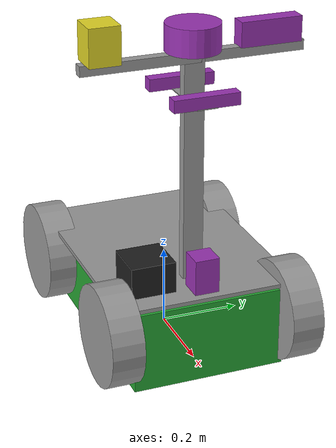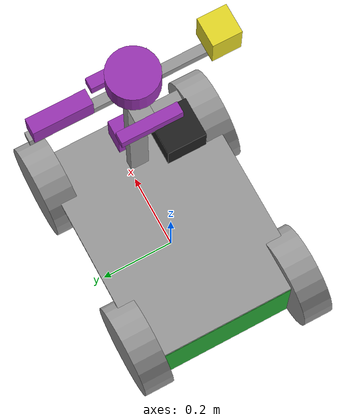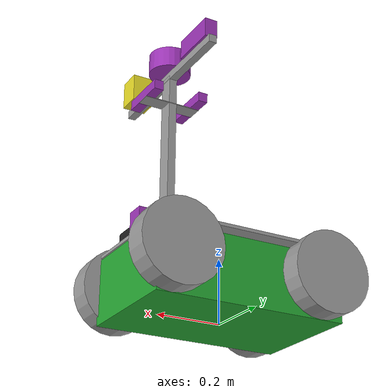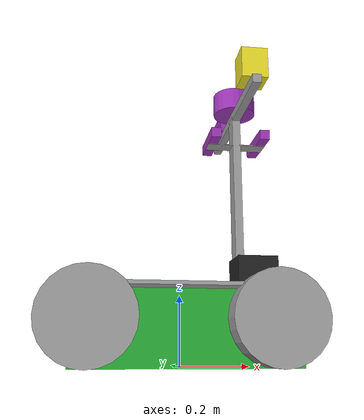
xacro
<?xml version="1.0"?>
<robot name="my_robot" xmlns:xacro="http://www.ros.org/wiki/xacro">
    <xacro:include filename="common_properties.xacro"/>
    <xacro:include filename="mobile_base.xacro"/>
    <xacro:include filename="mobile_base_gazebo.xacro"/>
    <xacro:include filename="rover_platform.xacro"/>
    <xacro:include filename="rover_sensors.xacro"/>

</robot>

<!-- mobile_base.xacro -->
<robot xmlns:xacro="http://www.ros.org/wiki/xacro">
    <xacro:property name="base_length" value="0.6"/>
    <xacro:property name="base_width" value="0.38"/>
    <xacro:property name="base_height" value="0.2"/>
    <xacro:property name="wheel_length" value="0.08"/>

   <link name="base_footprint"/>

    <link name="base_link">
        <visual>
            <geometry>
                <box size="${base_length} ${base_width} ${base_height}"/>
            </geometry>
            <origin xyz="0 0 0.1" rpy="0 0 0"/>
            <material name="green"/>
        </visual>
        <inertial>
             <mass value="60" />
                <origin xyz="0.00381548 -0.00072475 0.13654259" rpy="0 0 0" />
                <inertia ixx="0.0010966742070308941" ixy="-3.7461692282368137e-07" ixz="1.9558543577840812e-07"
                        iyy="0.0017930350217347623" iyz="2.0532496529124063e-07"
                        izz="0.0025355228375863507" />
        </inertial>
        <collision>
            <geometry>
                <box size="${base_length} 0.4 0.2"/>
            </geometry>
            <origin xyz="0 0 0.1" rpy="0 0 0"/>
        </collision>
    </link>

    <xacro:macro name="wheel_link" params="prefix">

    <link name="${prefix}_wheel_link">
            <visual>
                <geometry>
                    <cylinder radius="0.125" length="0.08"/>
                </geometry>
                <origin xyz="0 0 0" rpy="${pi/ 2.0} 0 0"/>
                <material name="grey"/>
            </visual>
            <collision>
                <geometry>
                    <cylinder radius="0.125" length="0.08"/>
                </geometry>
                <origin xyz="0 0 0" rpy="${pi/ 2.0} 0 0"/>
            </collision>
            <xacro:cylinder_inertia m="10" r="0.1" h="0.05" xyz="0 0 0" rpy="${pi/ 2.0} 0 0"/>
        </link>
    </xacro:macro>

    <xacro:wheel_link prefix="right_front"/>
    <xacro:wheel_link prefix="left_front"/>
    <xacro:wheel_link prefix="right_back"/>
    <xacro:wheel_link prefix="left_back"/>

    <joint name="base_footprint_link" type="fixed">
        <parent link="base_footprint"/>
        <child link="base_link"/>
        <origin xyz="0 0 0" rpy="0 0 0"/>
    </joint>

    <joint name="base_right_front_wheel_joint" type="continuous">
        <parent link="base_link"/>
        <child link="right_front_wheel_link"/>
        <origin xyz="-0.255  ${-(base_width/ 2.0) - 0.03} 0.125" rpy="0 0 0"/>
        <axis xyz="0 1 0"/>
    </joint>

    <joint name="base_left_front_wheel_joint" type="continuous">
        <parent link="base_link"/>
        <child link="left_front_wheel_link"/>
        <origin xyz="0.255  ${(base_width / 2.0) + 0.03} 0.125" rpy="0 0 0"/>
        <axis xyz="0 1 0"/>
    </joint>
        <joint name="base_right_back_wheel_joint" type="continuous">
        <parent link="base_link"/>
        <child link="right_back_wheel_link"/>
        <origin xyz="0.225  ${-(base_width/ 2.0) - 0.03} 0.125" rpy="0 0 0"/>
        <axis xyz="0 1 0"/>
    </joint>

    <joint name="base_left_back_wheel_joint" type="continuous">
        <parent link="base_link"/>
        <child link="left_back_wheel_link"/>
        <origin xyz="-0.225  ${(base_width / 2.0) + 0.03} 0.125" rpy="0 0 0"/>
        <axis xyz="0 1 0"/>
    </joint>

</robot>

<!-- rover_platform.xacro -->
<robot xmlns:xacro="http://www.ros.org/wiki/xacro">

    <xacro:property name="platform_length" value="0.60" />
    <xacro:property name="platform_width" value="0.45" />
    <xacro:property name="platform_height" value="0.01" />

    <link name="platform_link">
        <visual>
            <geometry>
                <box size="${platform_length} ${platform_width} ${platform_height}" />
            </geometry>
            <origin xyz="0 0 ${platform_height / 2}" rpy="0 0 0" />
            <material name="grey" />
        </visual>
        <collision>
            <origin xyz="0 0 ${platform_height / 2}" rpy="0 0 0" />
            <geometry>
                <box size="${platform_length} ${platform_width} ${platform_height}" />
            </geometry>
        </collision>
        <xacro:box_inertia m="4.0" l="${platform_length}" w="${platform_width}" h="${platform_height}" xyz="0 0 ${platform_height / 2}" rpy="0 0 0" />
    </link>

    <link name="vertical_gps_stand">
        <visual>
            <geometry>
                <box size="0.025 0.05 0.56" />
            </geometry>
            <origin xyz="0 0 0.28" rpy="0 0 0" />
            <material name="grey" />
        </visual>
        <collision>
            <origin xyz="0 0 0.30" rpy="0 0 0" />
            <geometry>
                <box size="0.2 0.5 0.70" />
            </geometry>
        </collision>
        <xacro:box_inertia m="2.5" l="0.025" w="0.05" h="0.56" xyz="0 0 0.28" rpy="0 0 0" />
    </link>

    <link name="horizontal_gps_stand">
        <visual>
            <geometry>
                <box size="0.025 0.54 0.025" />
            </geometry>
            <origin xyz="0 0 0" rpy="0 0 0" />
            <material name="grey" />
        </visual>
    </link>

    <link name="horizontal_camera_stand">
        <visual>
            <geometry>
                <box size="0.18 0.05 0.0025" />
            </geometry>
            <origin xyz="0 0 0" rpy="0 0 0" />
            <material name="grey" />
        </visual>
    </link>

    <link name="jetson">
        <visual>
            <geometry>
                <box size="0.11 0.11 0.09" />
            </geometry>
            <origin xyz="0 0 0.0225" rpy="0 0 0" />
            <material name="black" />
        </visual>
    </link>

    <link name="emergency_stop">
        <visual>
            <geometry>
                <box size="0.075 0.075 0.09" />
            </geometry>
            <origin xyz="0 0 0.0575" rpy="0 0 0" />
            <material name="yellow" />
        </visual>
    </link>

    <joint name="emergency_link" type="fixed">
        <parent link="horizontal_gps_stand" />
        <child link="emergency_stop" />
        <origin xyz="0 -0.219 0" rpy="0 0 0"/>
    </joint>

    <joint name="base_platform_joint" type="fixed">
        <parent link="base_link" />
        <child link="platform_link" />
        <origin xyz="0 0 0.205" rpy="0 0 0"/>
    </joint>

    <joint name="base_vertical_gps_stand_joint" type="fixed">
        <parent link="platform_link" />
        <child link="vertical_gps_stand" />
        <origin xyz="0.1775 0 0" rpy="0 0 0"/>
    </joint>

    <joint name="vertical_hroizontal_gps_stand_joint" type="fixed">
        <parent link="vertical_gps_stand" />
        <child link="horizontal_gps_stand" />
        <origin xyz="0 0 0.56" rpy="0 0 0"/>
    </joint>

    <joint name="vertical_hroizontal_camera_stand_joint" type="fixed">
        <parent link="vertical_gps_stand" />
        <child link="horizontal_camera_stand" />
        <origin xyz="0 0 0.465" rpy="0 0 0"/>
    </joint>

    <joint name="platform_jetson_joint" type="fixed">
        <parent link="platform_link" />
        <child link="jetson" />
        <origin xyz="0.19 -0.12 0.02" rpy="0 0 0"/>
    </joint>
</robot>

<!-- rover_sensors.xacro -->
<robot xmlns:xacro="http://www.ros.org/wiki/xacro">

    <link name="lidar_front">
        <visual>
            <geometry>
                <box size="0.06 0.06 0.09" />
            </geometry>
            <origin xyz="0 0 0.0525" rpy="0 0 0" />
            <material name="purple" />
        </visual>
    </link>

    <link name="camera_front">
        <visual>
            <geometry>
                <box size="0.03 0.16 0.03" />
            </geometry>
            <origin xyz="0 0 0.015" rpy="0 0 0" />
            <material name="purple" />
        </visual>
    </link>

    <link name="camera_back">
        <visual>
            <geometry>
                <box size="0.03 0.16 0.03" />
            </geometry>
            <origin xyz="0 0 0.015" rpy="0 0 0" />
            <material name="purple" />
        </visual>
    </link>

    <link name="gps_antena">
        <visual>
            <geometry>
                <cylinder radius="0.065" length="0.065" />
            </geometry>
            <origin xyz="0 0 0.035" rpy="0 0 0" />
            <material name="purple" />
        </visual>
    </link>

    <link name="lte_antena">
        <visual>
            <geometry>
                <box size="0.04 0.15 0.06" />
            </geometry>
            <origin xyz="0 0 0.04" rpy="0 0 0" />
            <material name="purple" />
        </visual>
    </link>

    <joint name="lte_horizontal_joint" type="fixed">
        <parent link="horizontal_gps_stand" />
        <child link="lte_antena" />
        <origin xyz="0 0.185 0.00125" rpy="0 0 0"/>
    </joint>

    <joint name="lidar_front_platform_joint" type="fixed">
        <parent link="platform_link" />
        <child link="lidar_front" />
        <origin xyz="0.25 0 0" rpy="0 0 0"/>
    </joint>

    <joint name="camera_front_platform_joint" type="fixed">
        <parent link="horizontal_camera_stand" />
        <child link="camera_front" />
        <origin xyz="0.075 0 0" rpy="0 0 0"/>
    </joint>

    <joint name="camera_back_platform_joint" type="fixed">
        <parent link="horizontal_camera_stand" />
        <child link="camera_back" />
        <origin xyz="-0.075 0 0" rpy="0 0 0"/>
    </joint>

    <joint name="gps_antena_horizontal_stand_joint" type="fixed">
        <parent link="horizontal_gps_stand" />
        <child link="gps_antena" />
        <origin xyz="0 0 0.0125" rpy="0 0 0"/>
    </joint>

</robot>
